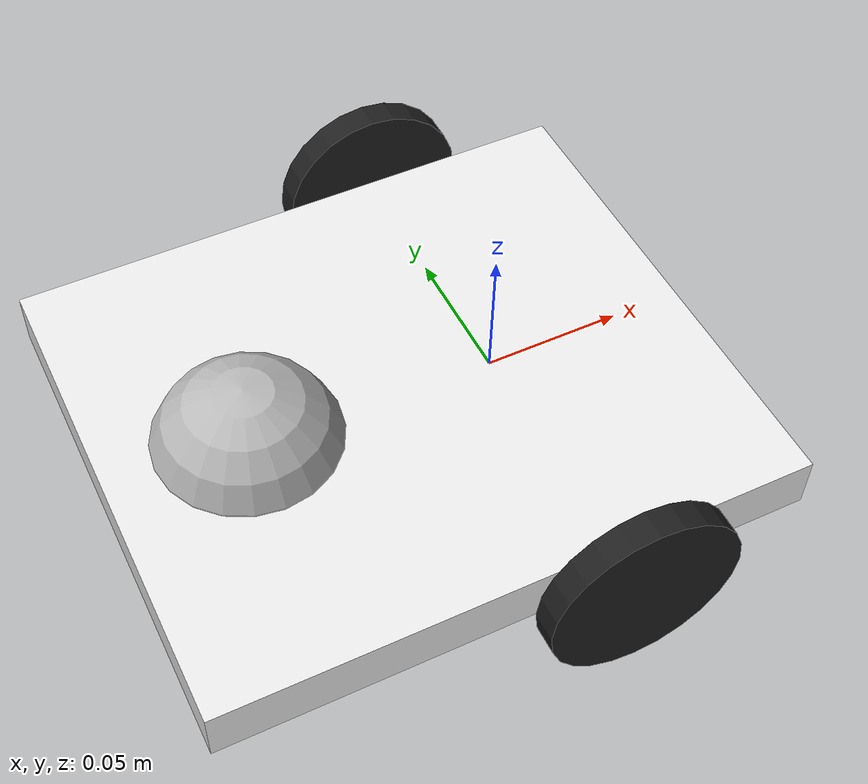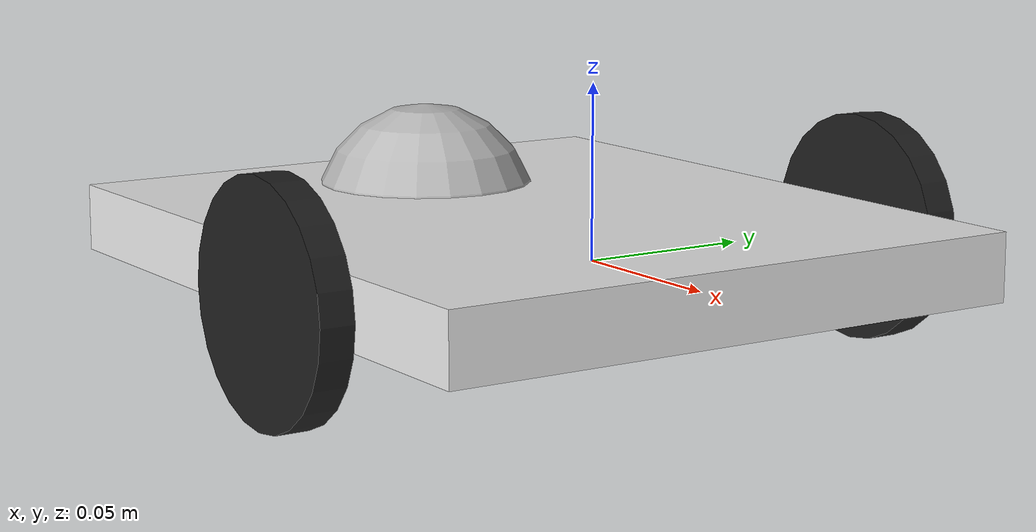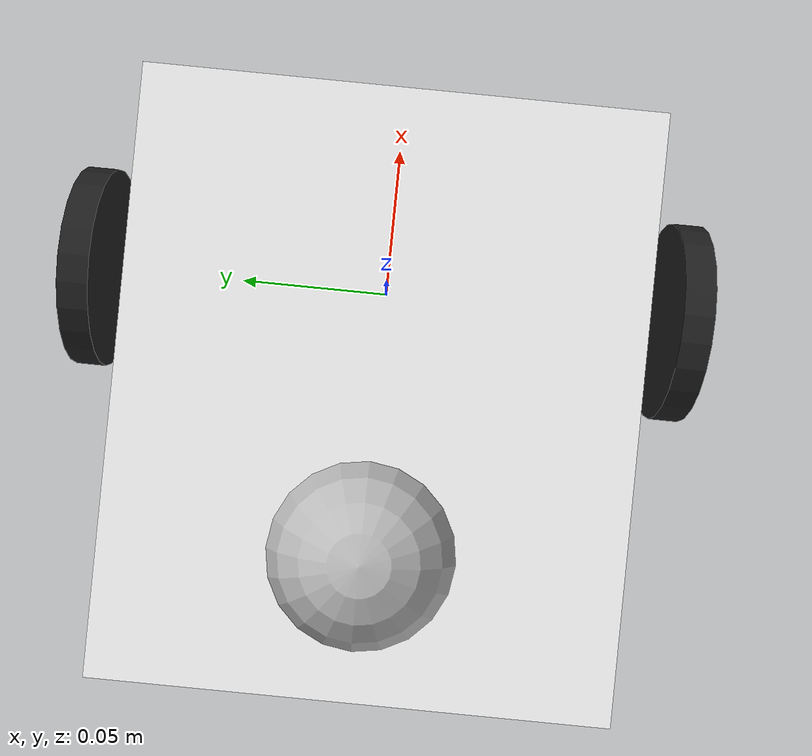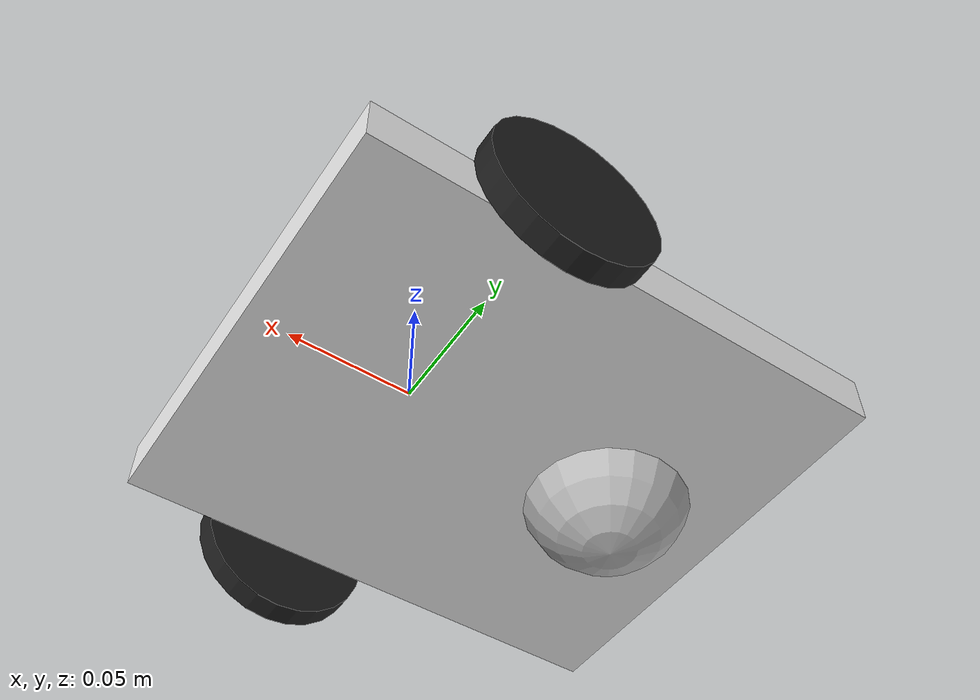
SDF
<sdf version='1.6'>
  <model name='rospibot_model_06'>
    <link name='base_link'>
      <pose frame=''>0 0 0 0 -0 0</pose>
      <inertial>
        <pose frame=''>0 0 0 0 -0 0</pose>
        <mass>5</mass>
        <inertia>
          <ixx>0.13</ixx>
          <ixy>0</ixy>
          <ixz>0</ixz>
          <iyy>0.21</iyy>
          <iyz>0</iyz>
          <izz>0.13</izz>
        </inertia>
      </inertial>
      <collision name='base_link_collision'>
        <pose frame=''>0 -0.035 0 0 -0 0</pose>
        <geometry>
          <box>
            <size>0.21 0.18 0.02</size>
          </box>
        </geometry>
        <surface>
          <contact>
            <ode/>
          </contact>
          <friction>
            <ode/>
          </friction>
        </surface>
      </collision>
      <collision name='base_link_collision_1'>
        <pose frame=''>-0.09 0 0 0 -0 0</pose>
        <geometry>
          <sphere>
            <radius>0.034</radius>
          </sphere>
        </geometry>
        <surface>
          <contact>
            <ode/>
          </contact>
          <friction>
            <ode/>
          </friction>
        </surface>
      </collision>
      <visual name='base_link_visual'>
        <pose frame=''>-0.035 0 0 0 -0 0</pose>
        <geometry>
          <box>
            <size>0.21 0.18 0.02</size>
          </box>
        </geometry>
        <material>
          <script>
            <name>Gazebo/White</name>
            <uri>file://media/materials/scripts/gazebo.material</uri>
          </script>
        </material>
      </visual>
      <visual name='base_link_fixed_joint_lump__caster_visual_1'>
        <pose frame=''>-0.09 0 0 0 -0 0</pose>
        <geometry>
          <sphere>
            <radius>0.034</radius>
          </sphere>
        </geometry>
      </visual>
      <gravity>1</gravity>
      <velocity_decay/>
      <self_collide>0</self_collide>
    </link>
    <link name='left_wheel'>
      <pose frame=''>0 0.1 0 0 -0 0</pose>
      <inertial>
        <pose frame=''>0 0 0 0 -0 0</pose>
        <mass>0.5</mass>
        <inertia>
          <ixx>0.01</ixx>
          <ixy>0</ixy>
          <ixz>0</ixz>
          <iyy>0.005</iyy>
          <iyz>0</iyz>
          <izz>0.005</izz>
        </inertia>
      </inertial>
      <collision name='left_wheel_collision'>
        <pose frame=''>0 0 0 1.57079 -0 0</pose>
        <geometry>
          <cylinder>
            <length>0.01</length>
            <radius>0.034</radius>
          </cylinder>
        </geometry>
        <surface>
          <contact>
            <ode/>
          </contact>
          <friction>
            <ode/>
          </friction>
        </surface>
      </collision>
      <visual name='left_wheel_visual'>
        <pose frame=''>0 0 0 1.57079 -0 0</pose>
        <geometry>
          <cylinder>
            <length>0.01</length>
            <radius>0.034</radius>
          </cylinder>
        </geometry>
        <material>
          <script>
            <name>Gazebo/Black</name>
            <uri>file://media/materials/scripts/gazebo.material</uri>
          </script>
        </material>
      </visual>
      <gravity>1</gravity>
      <velocity_decay/>
      <self_collide>0</self_collide>
    </link>
    <joint name='joint_left_wheel' type='revolute'>
      <child>left_wheel</child>
      <parent>base_link</parent>
      <axis>
        <xyz>0 1 0</xyz>
        <limit>
          <lower>-1e+16</lower>
          <upper>1e+16</upper>
        </limit>
        <dynamics>
          <spring_reference>0</spring_reference>
          <spring_stiffness>0</spring_stiffness>
        </dynamics>
        <use_parent_model_frame>1</use_parent_model_frame>
      </axis>
    </joint>
    <link name='right_wheel'>
      <pose frame=''>0 -0.1 0 0 -0 0</pose>
      <inertial>
        <pose frame=''>0 0 0 0 -0 0</pose>
        <mass>0.5</mass>
        <inertia>
          <ixx>0.01</ixx>
          <ixy>0</ixy>
          <ixz>0</ixz>
          <iyy>0.005</iyy>
          <iyz>0</iyz>
          <izz>0.005</izz>
        </inertia>
      </inertial>
      <collision name='right_wheel_collision'>
        <pose frame=''>0 0 0 1.57079 -0 0</pose>
        <geometry>
          <cylinder>
            <length>0.01</length>
            <radius>0.034</radius>
          </cylinder>
        </geometry>
        <surface>
          <contact>
            <ode/>
          </contact>
          <friction>
            <ode/>
          </friction>
        </surface>
      </collision>
      <visual name='right_wheel_visual'>
        <pose frame=''>0 0 0 1.57079 -0 0</pose>
        <geometry>
          <cylinder>
            <length>0.01</length>
            <radius>0.034</radius>
          </cylinder>
        </geometry>
        <material>
          <script>
            <name>Gazebo/Black</name>
            <uri>file://media/materials/scripts/gazebo.material</uri>
          </script>
        </material>
      </visual>
      <gravity>1</gravity>
      <velocity_decay/>
      <self_collide>0</self_collide>
    </link>
    <joint name='joint_right_wheel' type='revolute'>
      <child>right_wheel</child>
      <parent>base_link</parent>
      <axis>
        <xyz>0 1 0</xyz>
        <limit>
          <lower>-1e+16</lower>
          <upper>1e+16</upper>
        </limit>
        <dynamics>
          <spring_reference>0</spring_reference>
          <spring_stiffness>0</spring_stiffness>
        </dynamics>
        <use_parent_model_frame>1</use_parent_model_frame>
      </axis>
    </joint>
  </model>
</sdf>
